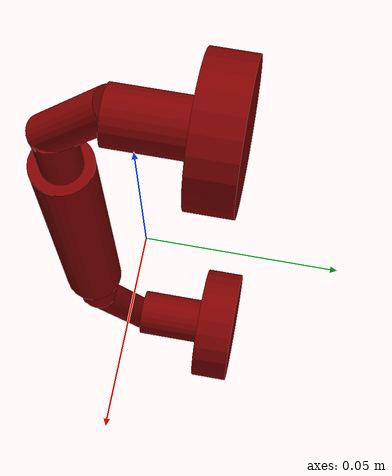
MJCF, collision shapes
<?xml version='1.0' encoding='UTF-8'?>
<mujoco model="model">
  <option timestep="0.002" gravity="0.0 0.0 -9.81"/>
  <compiler angle="radian"/>
  <asset>
    <mesh file="visuals/CabinetHandle001.obj" name="CabinetHandle001_vis"/>
    <texture file="visuals/T_BC001.png" name="tex" type="2d"/>
    <material name="mat" rgba="1 1 1 1.0" texture="tex" shininess="0.5" specular="0.3103448502657381"/>
  </asset>
  <default>
    <default class="visual">
      <geom conaffinity="0" contype="0" group="1" type="mesh"/>
    </default>
    <default class="collision">
      <geom group="0" rgba="0.5 0 0 0.5" density="1.0" solref="0.004 1" solimp="0.998 0.998 0.001"/>
    </default>
    <default class="spawn">
      <geom group="0" rgba="1 1 1 0.5" contype="0" conaffinity="0"/>
      <site group="0" rgba="1 1 1 0.5"/>
    </default>
    <default class="region">
      <geom group="1" conaffinity="0" contype="0" rgba="0 1 0 0" mass="0"/>
    </default>
  </default>
  <worldbody>
    <body>
      <body name="object">
        <geom mesh="CabinetHandle001_vis" type="mesh" solimp="0.998 0.998 0.001" solref="0.001 1" friction="0.95 0.3 0.1" class="visual" material="mat"/>
        <geom type="cylinder" pos="-3.473057290648285e-07 0.019286135211586952 0.0654749721288681" size="0.016859089955687523 0.0052731712348759174" quat="0.7071068286895752 0.7071067690849304 -1.5700924318127872e-16 -1.2476937649185348e-24" class="collision"/>
        <geom type="cylinder" pos="3.557652235031128e-07 0.0192246213555336 -0.06547502428293228" size="0.016859089955687523 0.0052731712348759174" quat="0.7071068286895752 0.7071067690849304 -1.5700924318127872e-16 -1.2476937649185348e-24" class="collision"/>
        <geom type="cylinder" pos="-3.473057290648285e-07 0.005046972539275885 0.0654749721288681" size="0.006743635516613722 0.009946776553988457" quat="0.7071068286895752 0.7071067690849304 -1.5700924318127872e-16 -1.2476937649185348e-24" class="collision"/>
        <geom type="cylinder" pos="3.557652235031128e-07 0.005090363323688507 -0.06547503173351288" size="0.006743635516613722 0.009618254378437996" quat="0.7071068286895752 0.7071067690849304 -1.5700924318127872e-16 -1.2476937649185348e-24" class="collision"/>
        <geom type="cylinder" pos="-3.473057290648285e-07 -0.017738986760377884 0.0005036666989326477" size="0.005253855139017105 0.05305952951312065" quat="1.0 4.930380363757736e-32 -2.220446049250313e-16 2.220445916901415e-16" class="collision"/>
        <geom type="cylinder" pos="-3.473057290648285e-07 -0.011441710405051708 0.06041734665632248" size="0.004720544908195734 0.012119956314563751" quat="0.36381790041923523 0.9314700961112976 -8.078378211090877e-17 -1.2604412737960525e-16" class="collision"/>
        <geom type="cylinder" pos="-3.473057290648285e-07 -0.011441710405051708 -0.06009044870734215" size="0.004720544908195734 0.0121199581772089" quat="2.746748606341498e-08 7.032403459561465e-08 0.3638179898262024 -0.9314700365066528" class="collision"/>
        <geom type="cylinder" pos="-3.473057290648285e-07 -0.017738986760377884 0.0005036666989326477" size="0.0079387491568923 0.03706341236829758" quat="1.0 4.930380363757736e-32 -2.220446049250313e-16 2.220445916901415e-16" class="collision"/>
        <geom class="region" name="reg_main" type="box" pos="0.0 0.0 0.0" size="0.017501989215612412 0.025376001209020616 0.0829765031337738"/>
      </body>
    </body>
  </worldbody>
  <actuator/>
</mujoco>
